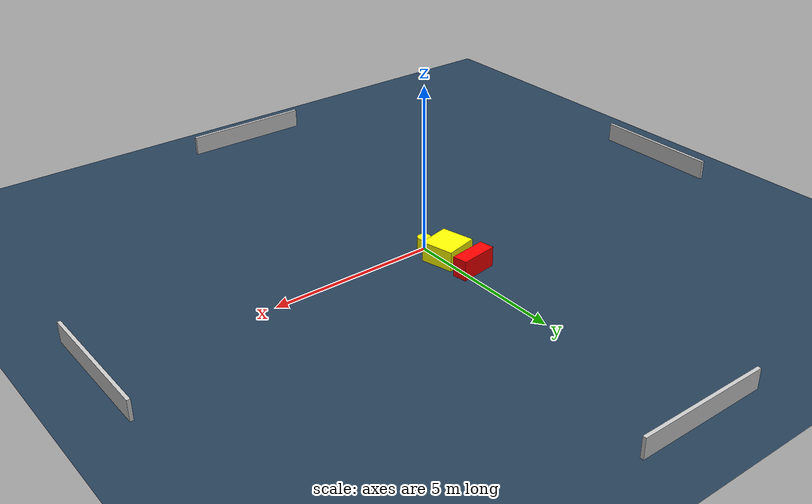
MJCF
<?xml version="1.0" ?>
<mujoco model="generated_environment">
  <option timestep="0.01" integrator="RK4" cone="elliptic"/>
  <default>
    <geom density="1"/>
  </default>
  <asset>
    <texture builtin="gradient" height="3072" name="skybox" rgb1="0.3 0.5 0.7" rgb2="0 0 0" type="skybox" width="512"/>
    <texture builtin="checker" height="300" name="groundplane" rgb1="0.2 0.3 0.4" rgb2="0.1 0.2 0.3" type="2d" width="300"/>
    <material name="groundplane" reflectance="0.2" texrepeat="5 5" texture="groundplane"/>
  </asset>
  <worldbody>
    <light dir="0 0 -1" directional="true" pos="0 0 1.5"/>
    <geom condim="3" friction="0.5 0.005 0.001" material="groundplane" name="floor" pos="0 0 0" size="0 0 0.05" type="plane"/>
    <body name="walls">
      <geom name="wall_1" condim="4" pos="-10.0 0.0 0.3" rgba="0.800000011920929 0.800000011920929 0.800000011920929 1.0" size="0.05 2.0 0.3" type="box"/>
      <geom name="wall_2" condim="4" pos="10.0 0.0 0.3" rgba="0.800000011920929 0.800000011920929 0.800000011920929 1.0" size="0.05 2.0 0.3" type="box"/>
      <geom name="wall_3" condim="4" pos="0.0 -10.0 0.3" rgba="0.800000011920929 0.800000011920929 0.800000011920929 1.0" size="2.0 0.05 0.3" type="box"/>
      <geom name="wall_4" condim="4" pos="0.0 10.0 0.3" rgba="0.800000011920929 0.800000011920929 0.800000011920929 1.0" size="2.0 0.05 0.3" type="box"/>
    </body>
    <body name="robot">
      <joint name="joint_x" type="slide" pos="0 0 0" axis="1 0 0"/>
      <joint name="joint_y" type="slide" pos="0 0 0" axis="0 1 0"/>
      <geom name="robot" type="cylinder" pos="0.0 0.0 0.2" size="0.2 0.2 0.0" mass="5.0" friction="1.0 0.005 0.0001" condim="4" rgba="1.0 1.0 0.0 1.0"/>
    </body>
    <body name="obstacle_1_movable">
      <geom name="obstacle_1_movable" condim="4" pos="-0.15479339928429106 0.8577194792583264 0.3" euler="0 0 13.258232362350606" friction="0.0 0.005 0.001" rgba="1.0 1.0 0.0 1.0" size="0.5040130338247144 0.5081490241589045 0.3" type="box" mass="0.1"/>
      <joint type="free"/>
    </body>
    <body name="obstacle_2_static">
      <geom name="obstacle_2_static" condim="4" pos="-0.31042689843194166 1.7980642981991513 0.3" euler="0 0 188.54473611945753" friction="0.0 0.005 0.001" rgba="1.0 0.0 0.0 1.0" size="0.5802274742234266 0.22409393649431147 0.3" type="box"/>
    </body>
  </worldbody>
  <actuator>
    <motor name="actuator_x" joint="joint_x" gear="1" ctrlrange="-1 1"/>
    <motor name="actuator_y" joint="joint_y" gear="1" ctrlrange="-1 1"/>
  </actuator>
</mujoco>
